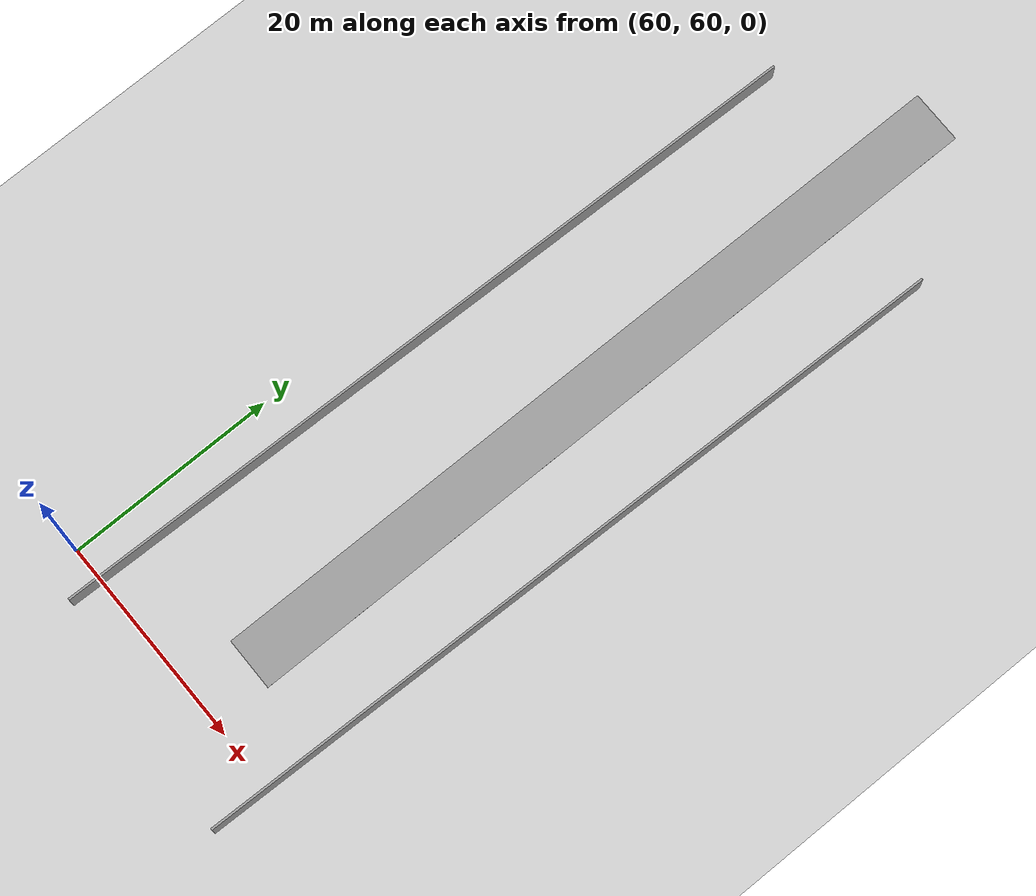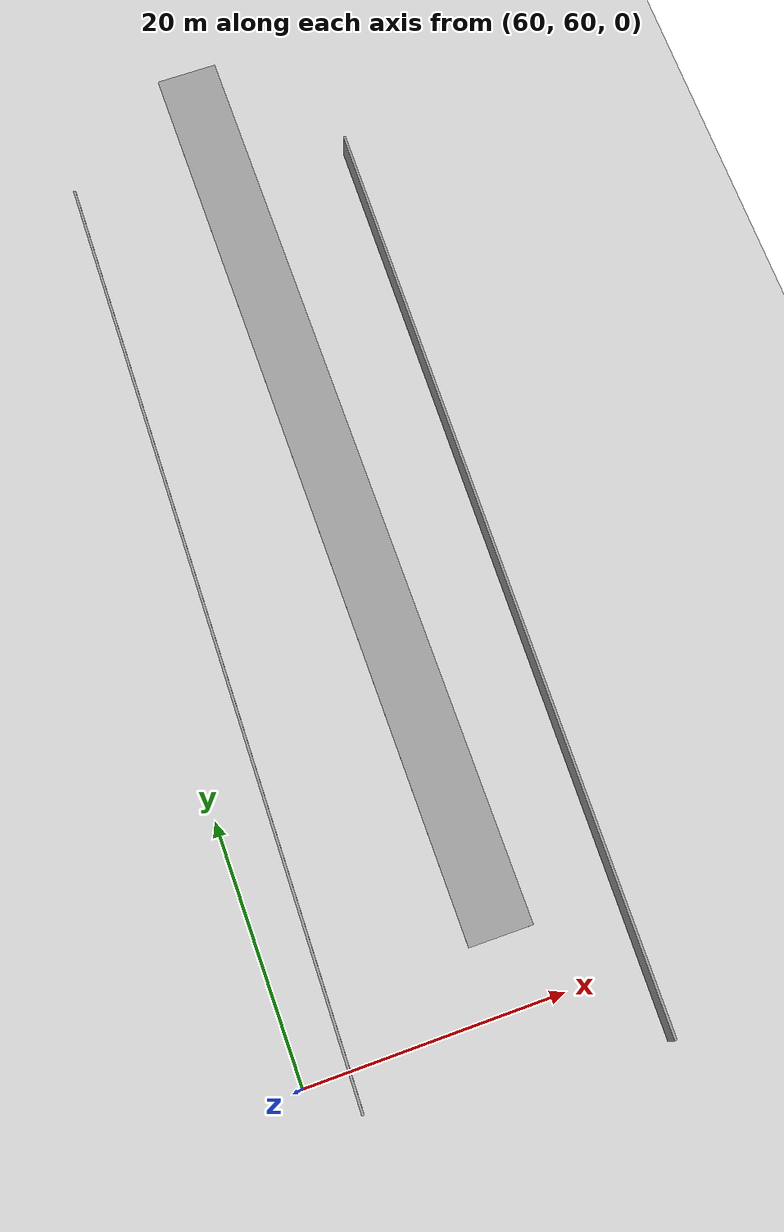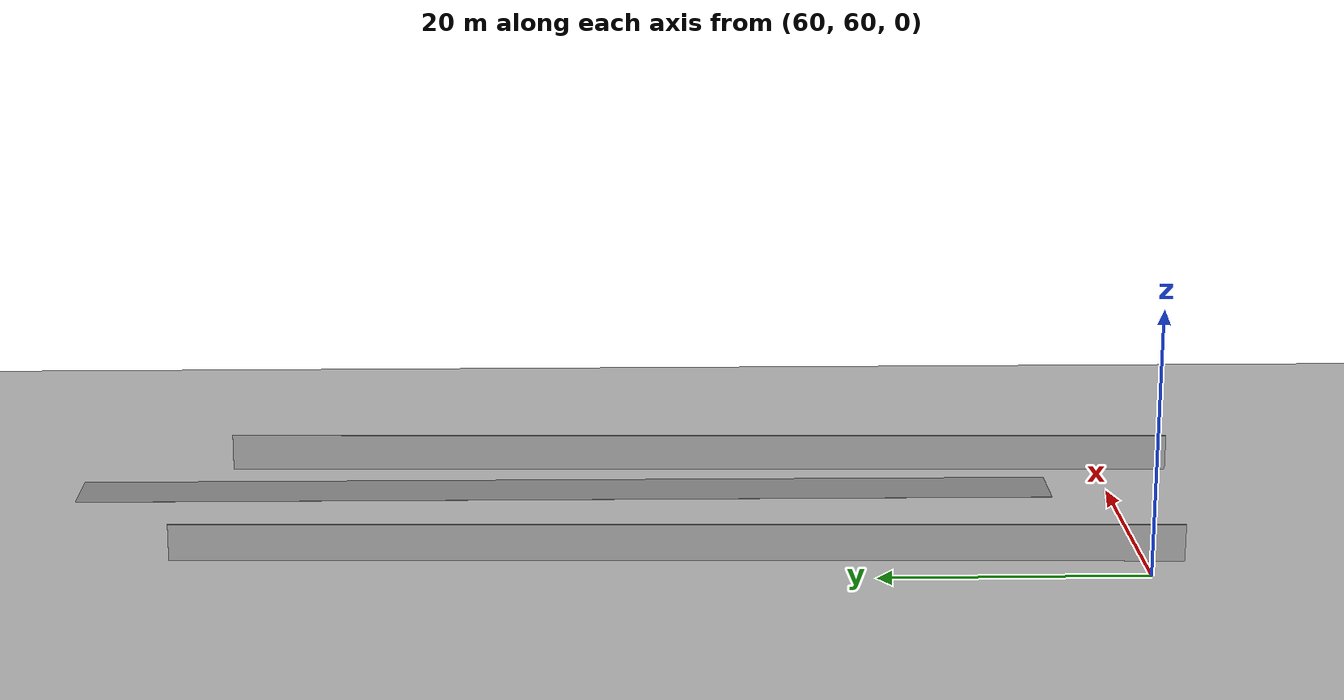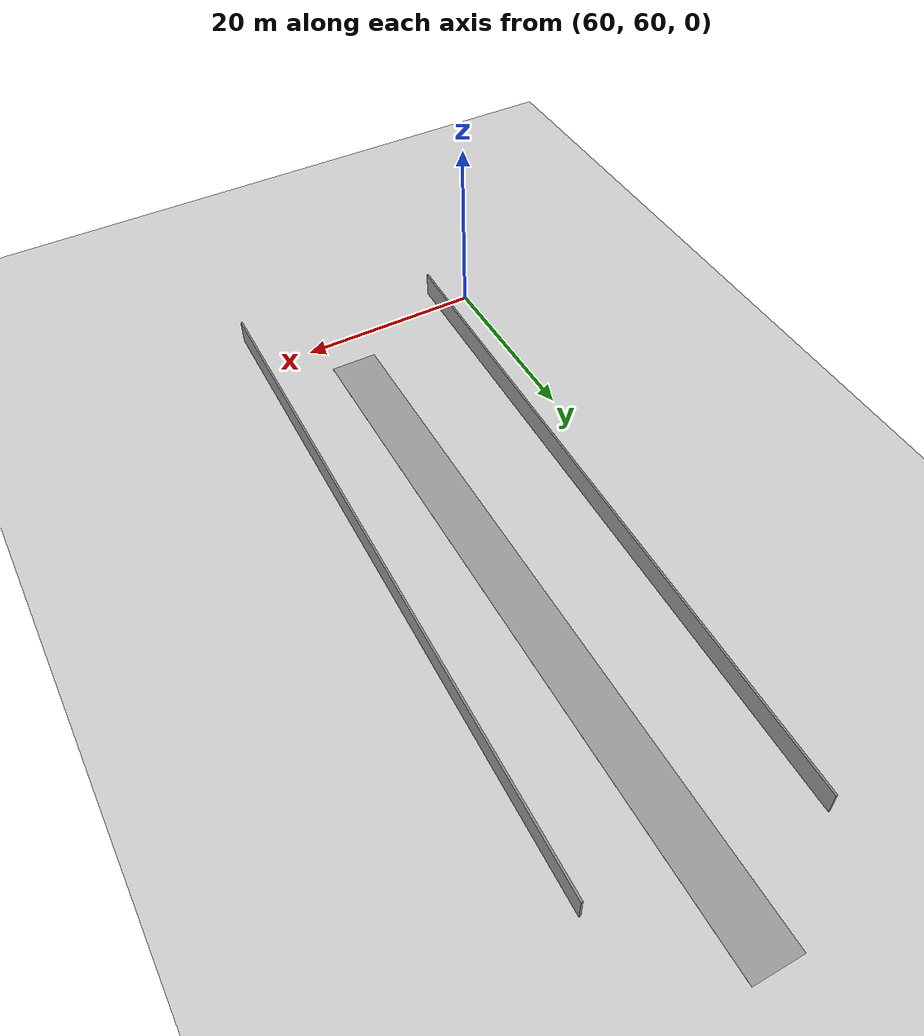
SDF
<sdf version="1.6">
 <world name="default">
  <model name="ground1_3">
   <static>1</static>
   <link name="link">
    <collision name="collision">
     <geometry><plane><normal>0 0 1</normal><size>100 100</size></plane></geometry>
     <surface><friction><ode><mu>100</mu><mu2>50</mu2></ode></friction></surface>
    </collision>
    <visual name="visual">
     <cast_shadows>0</cast_shadows>
     <geometry><plane><normal>0 0 1</normal><size>100 100</size></plane></geometry>
     <material>
      <script>
       <uri>model://ground1/materials/scripts</uri>
       <uri>model://ground1/materials/textures/</uri>
       <name>ground1/Image</name>
      </script>
     </material>
    </visual>
   </link>
   <pose>-0.015678 99.5294 0 0 -0 0</pose>
  </model>
  <model name="grey_wall2_3_clone_3">
   <static>1</static>
   <link name="link">
    <pose>0 0 1.4 0 -0 0</pose>
    <collision name="collision"><geometry><box><size>75 5 0.01</size></box></geometry></collision>
    <visual name="visual">
     <cast_shadows>0</cast_shadows>
     <geometry><box><size>75 5 0.01</size></box></geometry>
     <material>
      <script>
       <uri>model://grey_wall/materials/scripts</uri>
       <uri>model://grey_wall/materials/textures</uri>
       <name>vrc/grey_wall</name>
      </script>
     </material>
    </visual>
   </link>
   <pose>77.0451 102.674 0 0 0 -1.57442</pose>
  </model>
  <model name="grey_wall_clone_clone_0_clone_6">
   <static>1</static>
   <link name="link">
    <pose>0 0 1.4 0 -0 0</pose>
    <collision name="collision"><geometry><box><size>75 0.2 2.8</size></box></geometry></collision>
    <visual name="visual">
     <cast_shadows>0</cast_shadows>
     <geometry><box><size>75 0.2 2.8</size></box></geometry>
     <material>
      <script>
       <uri>model://grey_wall/materials/scripts</uri>
       <uri>model://grey_wall/materials/textures</uri>
       <name>vrc/grey_wall</name>
      </script>
     </material>
    </visual>
   </link>
   <pose>86.6237 91.8814 0 0 0 -1.59331</pose>
  </model>
  <model name="grey_wall_clone_clone_0_clone_9">
   <static>1</static>
   <link name="link">
    <pose>0 0 1.4 0 -0 0</pose>
    <collision name="collision"><geometry><box><size>75 0.2 2.8</size></box></geometry></collision>
    <visual name="visual">
     <cast_shadows>0</cast_shadows>
     <geometry><box><size>75 0.2 2.8</size></box></geometry>
     <material>
      <script>
       <uri>model://grey_wall/materials/scripts</uri>
       <uri>model://grey_wall/materials/textures</uri>
       <name>vrc/grey_wall</name>
      </script>
     </material>
    </visual>
   </link>
   <pose>64.2892 94.4596 0 0 0 -1.59331</pose>
  </model>
 </world>
</sdf>
